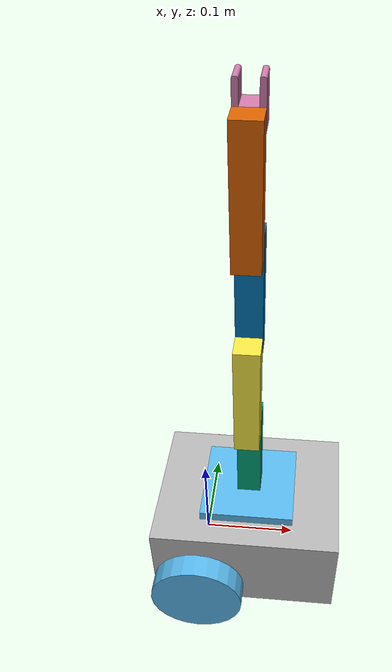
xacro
<?xml version='1.0'?>
<!-- se renombra el robot y se crea el environment 'robot' -->
<robot xmlns:xacro="http://www.ros.org/wiki/xacro" name="robot_car">
    <!-- Creacion de propiedades -->

    <!-- CART  -->
    <xacro:property name="bx" value="${2*100/1000}" />
    <xacro:property name="by" value="${2*80/1000}" />
    <xacro:property name="bz" value="${2*50/1000}" />

    <xacro:property name="osx" value="${2*25/1000}" />
    <xacro:property name="osy" value="${2*(40+12.5/2)/1000}" />
    <xacro:property name="osz" value="${2*12.5/1000}" />

    <xacro:property name="crad" value="${2*25/1000}" />
    <xacro:property name="clen" value="${2*12.5/1000}" />

    <xacro:property name="caster_rad" value="${2*12.5/1000}" />
    <xacro:property name="caster_osx" value="${2*(100-12.5)/1000}" />

    <!-- ARM  -->
    <xacro:property name="basex" value="${100/1000}" />
    <xacro:property name="basey" value="${100/1000}" />
    <xacro:property name="basez" value="${10/1000}" />

    <xacro:property name="blx" value="${25/1000}" />
    <xacro:property name="bly" value="${25/1000}" />
    <xacro:property name="blz" value="${110/1000}" />
    <xacro:property name="bl2z" value="${120/1000}" />

    <xacro:property name="half_arm" value="${50/1000}" />
    <xacro:property name="joint_axis_dist" value="${100/1000}" />

    <xacro:property name="lateral_offset" value="${25/1000}" />
    <xacro:property name="stlscale" value="${1/1000}" />

    <!-- Creacion de macro "funcion" para creacion de llantas laterales -->
    <xacro:macro name="wheel_macro" params="pname prad plen">
        <link name="${pname}">
            <visual>
                <!-- cylinder geometry -->
                <geometry>
                    <cylinder radius="${prad}" length="${plen}"/>
                </geometry>
                <!-- giramos el frame alrededor del eje x para que cuando length crezca en direccion del eje z, lo haga en la dimension correcta -->
                <origin xyz="0 0 0" rpy="-${pi/2} 0 0"/>
            </visual>

            <inertial>
                <mass value="1"/>
                <origin xyz="0 0 0" rpy="0 0 0"/>
                <!-- NO cambiamos la inercia aun debido a que no se requiere simular la dinamica del robot POR EL MOMENTO -->
                <!-- solo se deseaba "montar" y visualizar en RViz -->
                <inertia ixx="1" ixy="0" ixz="0" iyy="1" iyz="0" izz="1"/>
            </inertial>

            <collision>
                <geometry>
                    <cylinder radius="${prad}" length="${plen}"/>
                </geometry>
                <origin xyz="0 0 0" rpy="-${pi/2} 0 0"/>
            </collision>
        </link>
    </xacro:macro>

    <xacro:macro name="arm_link_macro" params="pname parmlen poffset">
        <link name="${pname}">
            <visual>
                <geometry>
                    <box size="${blx} ${parmlen} ${bly}"/>
                </geometry>

                <origin xyz="0 ${poffset} 0" rpy="0 0 0"/>
            </visual>
            <inertial>
                <mass value="1"/>
                <origin xyz="0 0 0" rpy="0 0 0"/>
                <inertia ixx="1" ixy="0" ixz="0" iyy="1" iyz="0" izz="1"/>
            </inertial>
            <collision>
                <geometry>
                    <box size="${blx} ${parmlen} ${bly}"/>
                </geometry>
                <origin xyz="0 ${poffset} 0" rpy="0 0 0"/>
            </collision>
        </link>
    </xacro:macro>

    <!-- crea el base link para referenciar otros links, y seguir la convencion de tener un base link (este link es buscado por otros scripts) -->
    <link name="base_link">
    </link>

    <link name="base_arm_link">
        <visual>
            <geometry>
                <box size="${basex} ${basey} ${basez}"/>
            </geometry>
            <origin xyz="0 0 ${-basez/2}" rpy="0 0 0"/>
        </visual>
        <inertial>
            <mass value="1"/>
            <origin xyz="0 0 0" rpy="0 0 0"/>
            <!-- Tensor de inercia -->
            <inertia ixx="1" ixy="0" ixz="0" iyy="1" iyz="0" izz="1"/>
        </inertial>
        <collision>
            <geometry>
                <box size="${basex} ${basey} ${basez}"/>
            </geometry>
            <origin xyz="0 0 ${-basez/2}" rpy="0 0 0"/>
        </collision>
    </link>

    <xacro:arm_link_macro pname = "boxn1_link"
                       parmlen  = "${blz}"
                       poffset = "${-blz/2}"/>
    <xacro:arm_link_macro pname = "boxn2_link"
                       parmlen  = "${bl2z}"
                       poffset = "${-half_arm}"/>
    <xacro:arm_link_macro pname = "boxn3_link"
                       parmlen  = "${bl2z}"
                       poffset = "${-half_arm}"/>
    <xacro:arm_link_macro pname = "boxn4_link"
                       parmlen  = "${bl2z}"
                       poffset = "${-half_arm}"/>

    <link name="tool_link">
        <visual>
            <geometry>
            <mesh filename="package://modelrobot_pkg_gbb/model/tool_cad.stl" scale="${stlscale} ${stlscale} ${stlscale}"/>
            </geometry>
            <origin xyz="0 0 0" rpy="0 0 0"/>
        </visual>
        <inertial>
            <mass value="1"/>
            <origin xyz="0 0 0" rpy="0 0 0"/>
            <inertia ixx="1" ixy="0" ixz="0" iyy="1" iyz="0" izz="1"/>
        </inertial>
        <collision>
            <geometry>
            <mesh filename="package://modelrobot_pkg_gbb/model/tool_cad.stl" scale="${stlscale} ${stlscale} ${stlscale}"/>
            </geometry>
            <origin xyz="0 0 0" rpy="0 0 0"/>
        </collision>
    </link>

    <joint name="chassis_basearm_joint" type="fixed">
        <parent link="chassis_link"/>
        <child link="base_arm_link"/>
        <origin xyz="${bx/2} 0 ${bz+basez}" rpy="0 0 0"/>
    </joint>

    <joint name="basearm_boxn1_joint" type="fixed">
        <parent link="base_arm_link"/>
        <child link="boxn1_link"/>
        <origin xyz="0 0 0" rpy="${-pi/2} 0 0"/>
    </joint>

    <joint name="boxn1_boxn2_joint" type="revolute">
        <parent link="boxn1_link"/>
        <child link="boxn2_link"/>
        <origin xyz="0 ${-joint_axis_dist} ${-lateral_offset}" rpy="0 0 0"/>
        <axis xyz="0 0 1"/>
        <limit effort="1" lower="${-pi}" upper="${pi}" velocity="1"/>
        <dynamics damping="1" friction="1"/>
    </joint>

    <joint name="boxn2_boxn3_joint" type="revolute">
        <parent link="boxn2_link"/>
        <child link="boxn3_link"/>
        <origin xyz="0 ${-joint_axis_dist} ${lateral_offset}" rpy="0 0 0"/>
        <axis xyz="0 0 1"/>
        <limit effort="1" lower="${-pi}" upper="${pi}" velocity="1"/>
        <dynamics damping="1" friction="1"/>
    </joint>

    <joint name="boxn3_boxn4_joint" type="revolute">
        <parent link="boxn3_link"/>
        <child link="boxn4_link"/>
        <origin xyz="0 ${-joint_axis_dist} ${-lateral_offset}" rpy="0 0 0"/>
        <axis xyz="0 0 1"/>
        <limit effort="1" lower="${-pi}" upper="${pi}" velocity="1"/>
        <dynamics damping="1" friction="1"/>
    </joint>

    <joint name="boxn4_tool_joint" type="revolute">
        <parent link="boxn4_link"/>
        <child link="tool_link"/>
        <origin xyz="0 ${-joint_axis_dist} ${3/2*lateral_offset}" rpy="0 0 ${pi}"/>
        <axis xyz="0 0 1"/>
        <limit effort="1" lower="${-pi}" upper="${pi}" velocity="1"/>
        <dynamics damping="1" friction="1"/>
    </joint>

    <!-- crea el joint entre base y chassis, tipo fixed ya que no hay movimiento relativo entre ellos es un RIGID TRANSFORM -->
    <joint name="base_chassis_joint" type="fixed">
        <parent link="base_link"/>
        <child link="chassis_link"/>
        <origin xyz="-${osx} 0 -${osz}" rpy="0 0 0"/>
    </joint>

    <!-- crea el chassis link -->
    <link name="chassis_link">
        <visual>
            <!-- box geometry -->
            <geometry>
                <box size="${bx} ${by} ${bz}"/>
            </geometry>
            <origin xyz="${bx/2} 0 ${bz/2}" rpy="0 0 0"/>
        </visual>

        <inertial>
            <mass value="1"/>
            <origin xyz="0 0 0" rpy="0 0 0"/>
            <!-- aqui iria inercia de caja o chassis -->
            <inertia ixx="1" ixy="0" ixz="0" iyy="1" iyz="0" izz="1"/>
        </inertial>

        <collision>
            <!-- box geometry -->
            <geometry>
                <box size="${bx} ${by} ${bz}"/>
            </geometry>
            <origin xyz="${bx/2} 0 ${bz/2}" rpy="0 0 0"/>
        </collision>
    </link>

    <!-- se instancia la macro construida para generar 2 links que representan las llantas derecha e izquierda -->
    <xacro:wheel_macro pname = "rwheel_link"
                       prad  = "${crad}"
                       plen  = "${clen}"/>

    <xacro:wheel_macro pname = "lwheel_link"
                       prad  = "${crad}"
                       plen  = "${clen}"/>

    <!-- se crea joint de la llanta derecha con el chassis-->
    <!-- el tipo es revoluta sin limites, o en URDF: "continuous" -->
    <joint name="chassis_rwheel_joint" type="continuous">
        <parent link="chassis_link"/>
        <child link="rwheel_link"/>
        <!-- se crea el origen del joint (punto de union del child con respecto al parent) adecuadamente (positivo en Y) -->
        <origin xyz="${osx} ${osy} ${osz}" rpy="0 0 0"/>
        <!-- se especifica eje de rotacion -->
        <axis xyz="0 1 0"/>
        <!-- se especifican los parametros de la dinamica del joint tipo revoluta (continuous) -->
        <limit effort="1" lower="0" upper="${2*pi}" velocity="1"/>
        <dynamics damping="1" friction="1"/>
    </joint>

    <!-- se crea joint de la llanta izquierda con el chassis-->
    <!-- el tipo es revoluta sin limites, o en URDF: "continuous" -->
    <joint name="chassis_lwheel_joint" type="continuous">
        <parent link="chassis_link"/>
        <child link="lwheel_link"/>
        <!-- se crea el origen del joint (punto de union del child con respecto al parent) adecuadamente (negativo en Y) -->
        <origin xyz="${osx} -${osy} ${osz}" rpy="0 0 0"/>
        <!-- se especifica eje de rotacion -->
        <axis xyz="0 1 0"/>
        <!-- se especifican los parametros de la dinamica del joint tipo revoluta (continuous) -->
        <limit effort="1" lower="0" upper="${2*pi}" velocity="1"/>
        <dynamics damping="1" friction="1"/>
    </joint>

    <!-- se crea el joint de la rueda-libre o caster, tipo fixed o fijo, ya que no consideraremos -->
    <!-- el movimiento de la rueda de apoyo -->
    <joint name="chassis_caster_joint" type="fixed">
        <parent link="chassis_link"/>
        <child link="caster_link"/>
        <origin xyz="${caster_osx} 0 0" rpy="0 0 0"/>
    </joint>

    <!-- se crea el link de la rueda-libre, es una geometria tipo esfera. -->
    <link name="caster_link">
        <visual>
            <!-- sphere geometry -->
            <geometry>
                <sphere radius="${caster_rad}"/>
            </geometry>
            <origin xyz="0 0 0" rpy="0 0 0"/>
        </visual>

        <inertial>
            <mass value="1"/>
            <origin xyz="0 0 0" rpy="0 0 0"/>
            <!-- modificar esta inercia mas adelante (cuando requiera simulacion de dinamica del robot) -->
            <inertia ixx="1" ixy="0" ixz="0" iyy="1" iyz="0" izz="1"/>
        </inertial>

        <collision>
            <!-- sphere geometry -->
            <geometry>
                <sphere radius="${caster_rad}"/>
            </geometry>
            <origin xyz="0 0 0" rpy="0 0 0"/>
        </collision>
    </link>
</robot>
